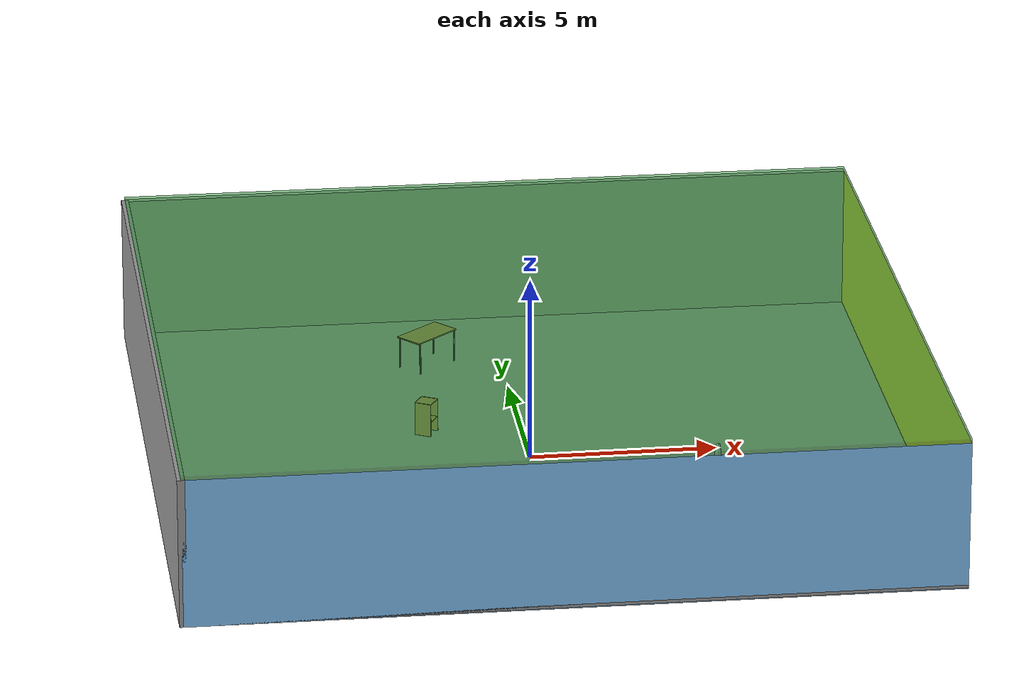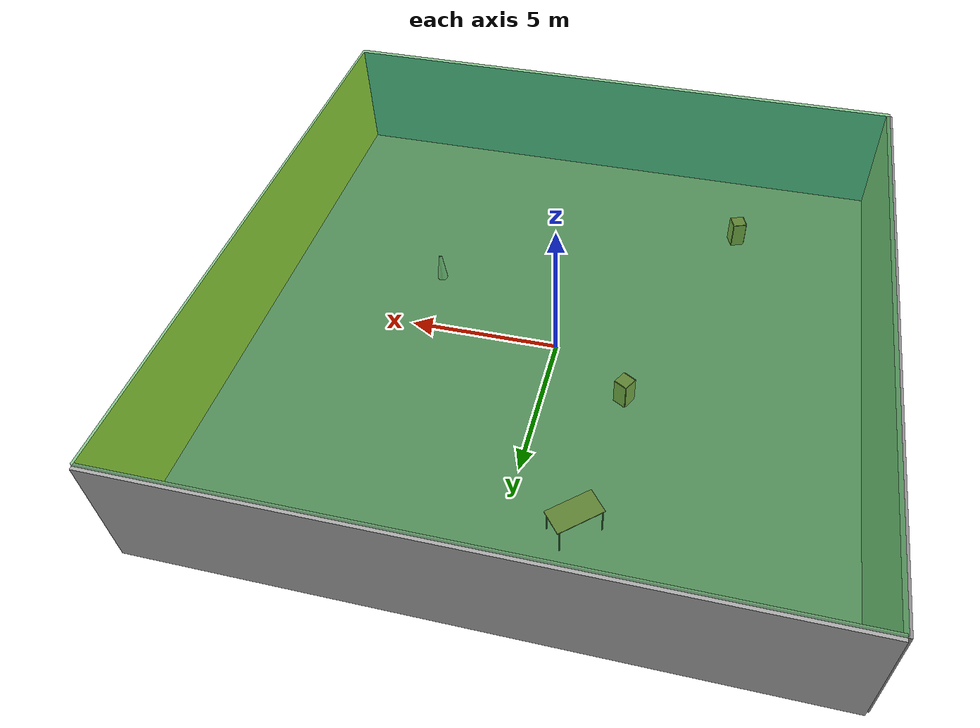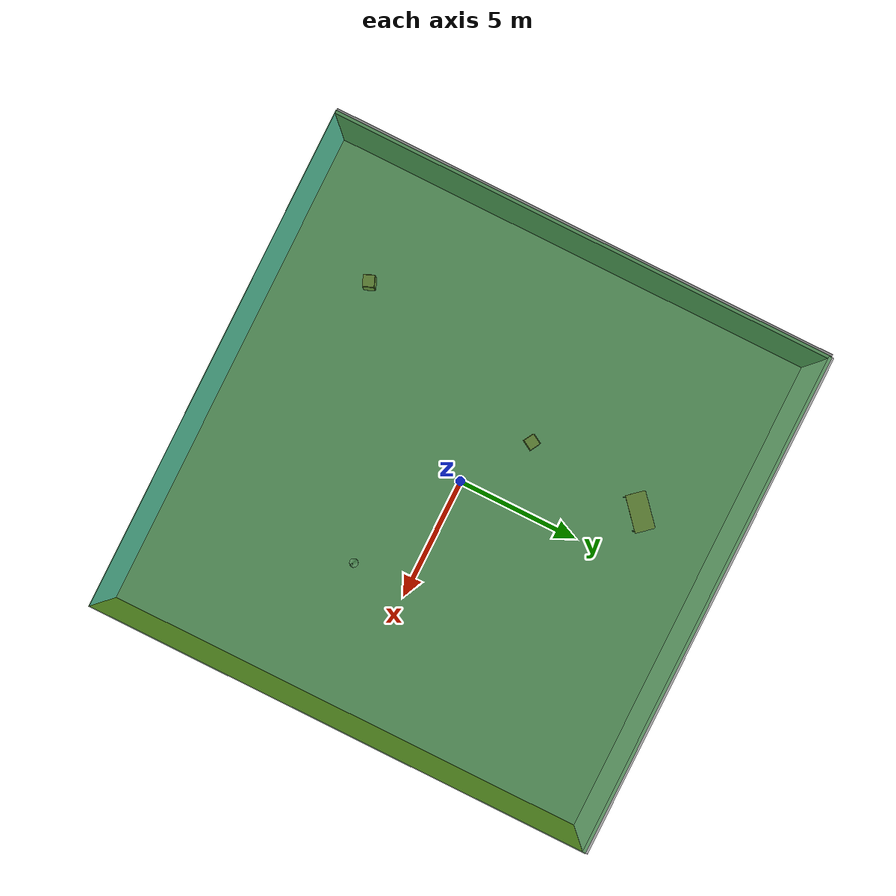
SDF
<sdf version="1.4">
 <world name="default">
  <physics type="ode">
   <max_step_size>0.001</max_step_size>
   <real_time_factor>1</real_time_factor>
   <real_time_update_rate>1000</real_time_update_rate>
   <gravity>0 0 -9.8</gravity>
  </physics>
  <scene><ambient>0.4 0.4 0.4 1</ambient><background>0.7 0.7 0.7 1</background><shadows>1</shadows></scene>
  <model name="Surrounding">
   <static>1</static>
   <link name="Ceiling">
    <collision name="Ceiling_Collision"><geometry><box><size>20 20 0.1</size></box></geometry></collision>
    <visual name="Ceiling_Visual">
     <geometry><box><size>20 20 0.1</size></box></geometry>
     <material>
      <script><uri>file://media/materials/scripts/gazebo.material</uri><name>Gazebo/GreenTransparent</name></script>
     </material>
    </visual>
    <pose>0 0 4.05 0 0 0</pose>
   </link>
   <link name="Wall_South">
    <collision name="Wall_South_Collision">
     <geometry><box><size>20 0 4</size></box></geometry>
     <pose>0 0 2 0 -0 0</pose>
    </collision>
    <visual name="Wall_South_Visual">
     <pose>0 0 2 0 -0 0</pose>
     <geometry><box><size>20 0 4</size></box></geometry>
     <material>
      <script><uri>file://media/materials/scripts/gazebo.material</uri><name>Gazebo/SkyBlue</name></script>
     </material>
    </visual>
    <velocity_decay><linear>0</linear><angular>0</angular></velocity_decay>
    <pose>0 -10 0 0 -0 0</pose>
   </link>
   <link name="Wall_East">
    <collision name="Wall_21_Collision">
     <geometry><box><size>20 0 4</size></box></geometry>
     <pose>0 0 2 0 -0 0</pose>
    </collision>
    <visual name="Wall_21_Visual">
     <pose>0 0 2 0 -0 0</pose>
     <geometry><box><size>20 0 4</size></box></geometry>
     <material>
      <script><uri>file://media/materials/scripts/gazebo.material</uri><name>Gazebo/ZincYellow</name></script>
     </material>
    </visual>
    <velocity_decay><linear>0</linear><angular>0</angular></velocity_decay>
    <pose>10 0 0 0 -0 1.5708</pose>
   </link>
   <link name="Wall_North">
    <collision name="Wall_22_Collision">
     <geometry><box><size>20 0.2 4</size></box></geometry>
     <pose>0 0 2 0 -0 0</pose>
    </collision>
    <visual name="Wall_22_Visual">
     <pose>0 0 2 0 -0 0</pose>
     <geometry><box><size>20 0.2 4</size></box></geometry>
     <material>
      <script><uri>file://media/materials/scripts/gazebo.material</uri><name>Gazebo/JointAnchor</name></script>
     </material>
    </visual>
    <velocity_decay><linear>0</linear><angular>0</angular></velocity_decay>
    <pose>0 10 0 0 -0 0</pose>
   </link>
   <link name="Wall_West">
    <collision name="Wall_23_Collision">
     <geometry><box><size>20 0.2 4</size></box></geometry>
     <pose>0 0 2 0 -0 0</pose>
    </collision>
    <visual name="Wall_23_Visual">
     <pose>0 0 2 0 -0 0</pose>
     <geometry><box><size>20 0.2 4</size></box></geometry>
     <material>
      <script><uri>file://media/materials/scripts/gazebo.material</uri><name>Gazebo/GreyGradientSky</name></script>
     </material>
    </visual>
    <velocity_decay><linear>0</linear><angular>0</angular></velocity_decay>
    <pose>-10 0 0 0 0 -1.5708</pose>
   </link>
   <link name="Ground_link">
    <collision name="collision">
     <pose>0 0 .05 0 -0 0</pose>
     <geometry><box><size>20 20 0.1</size></box></geometry>
    </collision>
    <visual name="visual">
     <pose>0 0 .05 0 -0 0</pose>
     <geometry><box><size>20 20 0.1</size></box></geometry>
     <material>
      <script><uri>file://media/materials/scripts/gazebo.material</uri><name>Gazebo/GreyGradientSky</name></script>
     </material>
    </visual>
   </link>
   <static>1</static>
  </model>
  <spherical_coordinates>
   <surface_model>EARTH_WGS84</surface_model>
   <latitude_deg>0</latitude_deg>
   <longitude_deg>0</longitude_deg>
   <elevation>0</elevation>
   <heading_deg>0</heading_deg>
  </spherical_coordinates>
  <light name="lightball_0" type="diffuse">
   <diffuse>0.8 0.8 0.8 1</diffuse>
   <specular>0.2 0.2 0.2 1</specular>
   <attenuation>
    <range>100</range>
    <constant>0.7</constant>
    <linear>0.01</linear>
    <quadratic>0.001</quadratic>
   </attenuation>
   <direction>-0.5 0.1 -0.9</direction>
   <pose>-5.18791842061 8.09951647941 3.83550181188 0 0 0</pose>
  </light>
  <light name="lightball_1" type="diffuse">
   <diffuse>0.8 0.8 0.8 1</diffuse>
   <specular>0.2 0.2 0.2 1</specular>
   <attenuation>
    <range>100</range>
    <constant>0.7</constant>
    <linear>0.01</linear>
    <quadratic>0.001</quadratic>
   </attenuation>
   <direction>-0.5 0.1 -0.9</direction>
   <pose>0.75592373385 2.69056762793 2.66704467811 0 0 0</pose>
  </light>
  <light name="lightball_2" type="diffuse">
   <diffuse>0.8 0.8 0.8 1</diffuse>
   <specular>0.2 0.2 0.2 1</specular>
   <attenuation>
    <range>100</range>
    <constant>0.7</constant>
    <linear>0.01</linear>
    <quadratic>0.001</quadratic>
   </attenuation>
   <direction>-0.5 0.1 -0.9</direction>
   <pose>0.485622947527 9.059264536 2.94226311043 0 0 0</pose>
  </light>
  <include><uri>model://cabinet</uri><pose>-5.31666490042 -6.5868205945 0 0 0 1.9421542341</pose></include>
  <include><uri>model://cabinet</uri><pose>-2.57525556238 1.77230645215 0 0 0 2.62138861328</pose></include>
  <include><uri>model://table</uri><pose>-2.03009821004 6.67116035655 0 0 0 0.715872863966</pose></include>
  <include>
   <uri>model://construction_cone</uri>
   <pose>4.68462908866 -2.31825627191 0 0 0 2.55348365296</pose>
  </include>
 </world>
</sdf>

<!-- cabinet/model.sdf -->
<sdf version="1.5">
  <model name="cabinet">
    <static>true</static>
    <link name="cabinet_bottom_plate">
      <inertial>
        <pose>0 0 -1 0 0 0</pose>
        <inertia>
          <ixx>2.050000</ixx>
          <ixy>0</ixy>
          <ixz>0</ixz>
          <iyy>2.050000</iyy>
          <iyz>0</iyz>
          <izz>2.050000</izz>
        </inertia>
        <mass>25.000000</mass>
      </inertial>
      <collision name="cabinet_bottom_plate_geom">
        <pose>0 0 0.010000 0 0 0</pose>
        <geometry>
          <box>
            <size>0.450000 0.450000 0.020000</size>
          </box>
        </geometry>
      </collision>
      <visual name="cabinet_bottom_plate_geom_visual">
        <pose>0 0 0.010000 0 0 0</pose>
        <geometry>
          <box>
            <size>0.450000 0.450000 0.020000</size>
          </box>
        </geometry>
        <material>
          <script>
            <uri>model://media/materials/scripts/gazebo.material</uri>
            <name>Gazebo/Wood</name>
          </script>
        </material>
      </visual>
      <collision name="cabinet_bottom_plate_geom_cabinet_back_plate">
        <pose>0.235000 0 0.510000 0 0 0</pose>
        <geometry>
          <box>
            <size>0.020000 0.450000 1.020000</size>
          </box>
        </geometry>
      </collision>
      <visual name="cabinet_bottom_plate_geom_cabinet_back_plate_visual">
        <pose>0.235000 0 0.510000 0 0 0</pose>
        <geometry>
          <box>
            <size>0.020000 0.450000 1.020000</size>
          </box>
        </geometry>
        <material>
          <script>
            <uri>model://media/materials/scripts/gazebo.material</uri>
            <name>Gazebo/Wood</name>
          </script>
        </material>
      </visual>
      <collision name="cabinet_bottom_plate_geom_cabinet_left_plate">
        <pose>0 0.235000 0.510000 0 0 0</pose>
        <geometry>
          <box>
            <size>0.450000 0.020000 1.020000</size>
          </box>
        </geometry>
      </collision>
      <visual name="cabinet_bottom_plate_geom_cabinet_left_plate_visual">
        <pose>0 0.235000 0.510000 0 0 0</pose>
        <geometry>
          <box>
            <size>0.450000 0.020000 1.020000</size>
          </box>
        </geometry>
        <material>
          <script>
            <uri>model://media/materials/scripts/gazebo.material</uri>
            <name>Gazebo/Wood</name>
          </script>
        </material>
      </visual>
      <collision name="cabinet_bottom_plate_geom_cabinet_middle_plate">
        <pose>0 0 0.510000 0 0 0</pose>
        <geometry>
          <box>
            <size>0.450000 0.450000 0.020000</size>
          </box>
        </geometry>
      </collision>
      <visual name="cabinet_bottom_plate_geom_cabinet_middle_plate_visual">
        <pose>0 0 0.510000 0 0 0</pose>
        <geometry>
          <box>
            <size>0.450000 0.450000 0.020000</size>
          </box>
        </geometry>
        <material>
          <script>
            <uri>model://media/materials/scripts/gazebo.material</uri>
            <name>Gazebo/Wood</name>
          </script>
        </material>
      </visual>
      <collision name="cabinet_bottom_plate_geom_cabinet_right_plate">
        <pose>0 -0.235000 0.510000 0 0 0</pose>
        <geometry>
          <box>
            <size>0.450000 0.020000 1.020000</size>
          </box>
        </geometry>
      </collision>
      <visual name="cabinet_bottom_plate_geom_cabinet_right_plate_visual">
        <pose>0 -0.235000 0.510000 0 0 0</pose>
        <geometry>
          <box>
            <size>0.450000 0.020000 1.020000</size>
          </box>
        </geometry>
        <material>
          <script>
            <uri>model://media/materials/scripts/gazebo.material</uri>
            <name>Gazebo/Wood</name>
          </script>
        </material>
      </visual>
      <collision name="cabinet_bottom_plate_geom_cabinet_top_plate">
        <pose>0 0 1.010000 0 0 0</pose>
        <geometry>
          <box>
            <size>0.450000 0.450000 0.020000</size>
          </box>
        </geometry>
      </collision>
      <visual name="cabinet_bottom_plate_geom_cabinet_top_plate_visual">
        <pose>0 0 1.010000 0 0 0</pose>
        <geometry>
          <box>
            <size>0.450000 0.450000 0.020000</size>
          </box>
        </geometry>
        <material>
          <script>
            <uri>model://media/materials/scripts/gazebo.material</uri>
            <name>Gazebo/Wood</name>
          </script>
        </material>
      </visual>
    </link>
  </model>
</sdf>

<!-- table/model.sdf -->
<sdf version="1.5">
  <model name="table">
    <static>true</static>
    <link name="link">
      <collision name="surface">
        <pose>0 0 1.0 0 0 0</pose>
        <geometry>
          <box>
            <size>1.5 0.8 0.03</size>
          </box>
        </geometry>
        <surface>
          <friction>
            <ode>
              <mu>0.6</mu>
              <mu2>0.6</mu2>
            </ode>
          </friction>
        </surface>
      </collision>
      <visual name="visual1">
        <pose>0 0 1.0 0 0 0</pose>
        <geometry>
          <box>
            <size>1.5 0.8 0.03</size>
          </box>
        </geometry>
        <material>
          <script>
            <uri>model://media/materials/scripts/gazebo.material</uri>
            <name>Gazebo/Wood</name>
          </script>
        </material>
      </visual>
      <collision name="front_left_leg">
        <pose>0.68 0.38 0.5 0 0 0</pose>
        <geometry>
          <cylinder>
            <radius>0.02</radius>
            <length>1.0</length>
          </cylinder>
        </geometry>
      </collision>
      <visual name="front_left_leg">
        <pose>0.68 0.38 0.5 0 0 0</pose>
        <geometry>
          <cylinder>
            <radius>0.02</radius>
            <length>1.0</length>
          </cylinder>
        </geometry>
        <material>
          <script>
            <uri>model://media/materials/scripts/gazebo.material</uri>
            <name>Gazebo/Grey</name>
          </script>
        </material>
      </visual>
      <collision name="front_right_leg">
        <pose>0.68 -0.38 0.5 0 0 0</pose>
        <geometry>
          <cylinder>
            <radius>0.02</radius>
            <length>1.0</length>
          </cylinder>
        </geometry>
      </collision>
      <visual name="front_right_leg">
        <pose>0.68 -0.38 0.5 0 0 0</pose>
        <geometry>
          <cylinder>
            <radius>0.02</radius>
            <length>1.0</length>
          </cylinder>
        </geometry>
        <material>
          <script>
            <uri>model://media/materials/scripts/gazebo.material</uri>
            <name>Gazebo/Grey</name>
          </script>
        </material>
      </visual>
      <collision name="back_right_leg">
        <pose>-0.68 -0.38 0.5 0 0 0</pose>
        <geometry>
          <cylinder>
            <radius>0.02</radius>
            <length>1.0</length>
          </cylinder>
        </geometry>
      </collision>
      <visual name="back_right_leg">
        <pose>-0.68 -0.38 0.5 0 0 0</pose>
        <geometry>
          <cylinder>
            <radius>0.02</radius>
            <length>1.0</length>
          </cylinder>
        </geometry>
        <material>
          <script>
            <uri>model://media/materials/scripts/gazebo.material</uri>
            <name>Gazebo/Grey</name>
          </script>
        </material>
      </visual>
      <collision name="back_left_leg">
        <pose>-0.68 0.38 0.5 0 0 0</pose>
        <geometry>
          <cylinder>
            <radius>0.02</radius>
            <length>1.0</length>
          </cylinder>
        </geometry>
      </collision>
      <visual name="back_left_leg">
        <pose>-0.68 0.38 0.5 0 0 0</pose>
        <geometry>
          <cylinder>
            <radius>0.02</radius>
            <length>1.0</length>
          </cylinder>
        </geometry>
        <material>
          <script>
            <uri>model://media/materials/scripts/gazebo.material</uri>
            <name>Gazebo/Grey</name>
          </script>
        </material>
      </visual>
    </link>
  </model>
</sdf>

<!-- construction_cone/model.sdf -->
<sdf version="1.5">
  <model name="Construction Cone">
    <link name="link">
      <collision name="collision">
        <geometry>
          <mesh>
            <scale>10 10 10</scale>
            <uri>file://isr-testbed/construction_cone/meshes/construction_cone.dae</uri>
          </mesh>
        </geometry>
      </collision>
      <visual name="visual">
        <geometry>
          <mesh>
            <scale>10 10 10</scale>
            <uri>file://isr-testbed/construction_cone/meshes/construction_cone.dae</uri>
          </mesh>
        </geometry>
      </visual>
    </link>
  </model>
</sdf>
